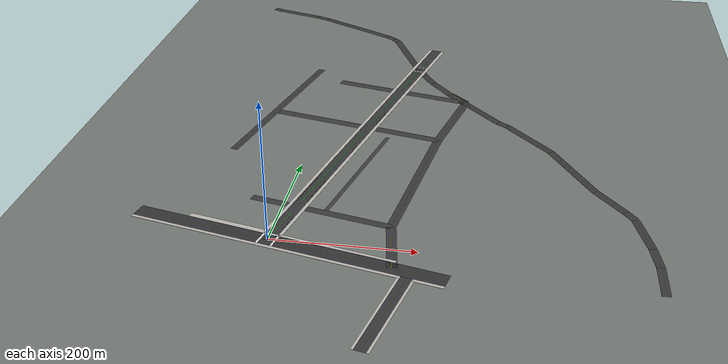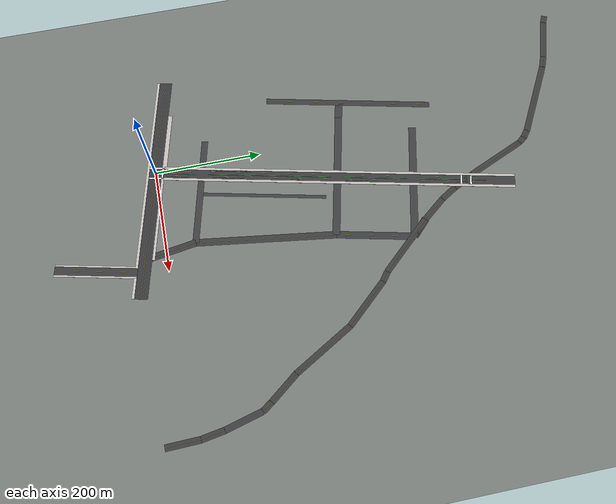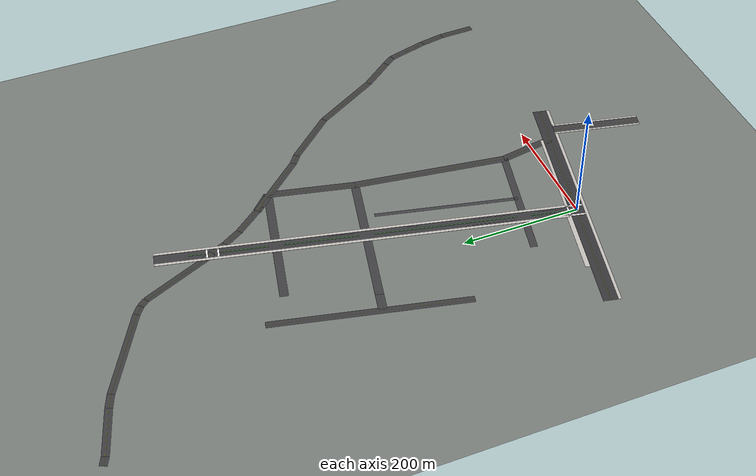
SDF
<sdf version="1.8">
 <world name="guanxin_world">
  <model name="ground_plane">
   <static>true</static>
   <pose>-100 480 0 0 0 0</pose>
   <link name="ground_link">
    <collision name="ground_col">
     <geometry><plane><normal>0 0 1</normal><size>1400 1400</size></plane></geometry>
     <surface>
      <friction><ode><mu>0.9</mu><mu2>0.9</mu2></ode></friction>
      <contact><ode><kd>100000</kd><kp>10000000</kp></ode></contact>
     </surface>
    </collision>
    <visual name="ground_vis">
     <geometry><plane><normal>0 0 1</normal><size>1400 1400</size></plane></geometry>
     <material><ambient>0.42 0.44 0.42 1</ambient><diffuse>0.48 0.50 0.48 1</diffuse></material>
    </visual>
   </link>
  </model>
  <model name="road_network">
   <static>true</static>
   <link name="road_link">
    <collision name="gx_road_str_col">
     <pose>76.077 331.379 0.01 0 0 1.34512</pose>
     <geometry><box><size>680.0 18.0 0.02</size></box></geometry>
     <surface><friction><ode><mu>0.9</mu><mu2>0.9</mu2></ode></friction></surface>
    </collision>
    <visual name="gx_road_str_vis">
     <pose>76.077 331.379 0.01 0 0 1.34512</pose>
     <geometry><box><size>680.0 18.0 0.02</size></box></geometry>
     <material><ambient>0.22 0.22 0.23 1</ambient><diffuse>0.24 0.24 0.25 1</diffuse></material>
    </visual>
    <collision name="gxe_seg1_south_col">
     <pose>163.693 7.563 0.01 0 0 1.73051</pose>
     <geometry><box><size>94.97 14.0 0.02</size></box></geometry>
     <surface><friction><ode><mu>0.9</mu><mu2>0.9</mu2></ode></friction></surface>
    </collision>
    <visual name="gxe_seg1_south_vis">
     <pose>163.693 7.563 0.01 0 0 1.73051</pose>
     <geometry><box><size>94.97 14.0 0.02</size></box></geometry>
     <material><ambient>0.22 0.22 0.23 1</ambient><diffuse>0.24 0.24 0.25 1</diffuse></material>
    </visual>
    <visual name="gxe_seg1_south_line">
     <pose>163.693 7.563 0.022 0 0 1.73051</pose>
     <geometry><box><size>94.97 0.25 0.002</size></box></geometry>
     <material><ambient>0.9 0.85 0.1 1</ambient><diffuse>0.95 0.9 0.1 1</diffuse></material>
    </visual>
    <collision name="gxe_seg2_school_col">
     <pose>174.119 181.900 0.01 0 0 1.43068</pose>
     <geometry><box><size>257.44 14.0 0.02</size></box></geometry>
     <surface><friction><ode><mu>0.9</mu><mu2>0.9</mu2></ode></friction></surface>
    </collision>
    <visual name="gxe_seg2_school_vis">
     <pose>174.119 181.900 0.01 0 0 1.43068</pose>
     <geometry><box><size>257.44 14.0 0.02</size></box></geometry>
     <material><ambient>0.22 0.22 0.23 1</ambient><diffuse>0.24 0.24 0.25 1</diffuse></material>
    </visual>
    <visual name="gxe_seg2_school_line">
     <pose>174.119 181.900 0.022 0 0 1.43068</pose>
     <geometry><box><size>257.44 0.25 0.002</size></box></geometry>
     <material><ambient>0.9 0.85 0.1 1</ambient><diffuse>0.95 0.9 0.1 1</diffuse></material>
    </visual>
    <collision name="gxe_seg3_park_col">
     <pose>208.151 379.290 0.01 0 0 1.34512</pose>
     <geometry><box><size>143.50 14.0 0.02</size></box></geometry>
     <surface><friction><ode><mu>0.9</mu><mu2>0.9</mu2></ode></friction></surface>
    </collision>
    <visual name="gxe_seg3_park_vis">
     <pose>208.151 379.290 0.01 0 0 1.34512</pose>
     <geometry><box><size>143.50 14.0 0.02</size></box></geometry>
     <material><ambient>0.22 0.22 0.23 1</ambient><diffuse>0.24 0.24 0.25 1</diffuse></material>
    </visual>
    <visual name="gxe_seg3_park_line">
     <pose>208.151 379.290 0.022 0 0 1.34512</pose>
     <geometry><box><size>143.50 0.25 0.002</size></box></geometry>
     <material><ambient>0.9 0.85 0.1 1</ambient><diffuse>0.95 0.9 0.1 1</diffuse></material>
    </visual>
    <collision name="gxe_seg4_north_col">
     <pose>209.600 463.300 0.01 0 0 2.37500</pose>
     <geometry><box><size>40.60 14.0 0.02</size></box></geometry>
     <surface><friction><ode><mu>0.9</mu><mu2>0.9</mu2></ode></friction></surface>
    </collision>
    <visual name="gxe_seg4_north_vis">
     <pose>209.600 463.300 0.01 0 0 2.37500</pose>
     <geometry><box><size>40.60 14.0 0.02</size></box></geometry>
     <material><ambient>0.22 0.22 0.23 1</ambient><diffuse>0.24 0.24 0.25 1</diffuse></material>
    </visual>
    <visual name="gxe_seg4_north_line">
     <pose>209.600 463.300 0.022 0 0 2.37500</pose>
     <geometry><box><size>40.60 0.25 0.002</size></box></geometry>
     <material><ambient>0.9 0.85 0.1 1</ambient><diffuse>0.95 0.9 0.1 1</diffuse></material>
    </visual>
    <collision name="guangfu_road_col">
     <pose>24.366 -5.594 0.01 0 0 -0.22568</pose>
     <geometry><box><size>450.0 24.0 0.02</size></box></geometry>
     <surface><friction><ode><mu>0.9</mu><mu2>0.9</mu2></ode></friction></surface>
    </collision>
    <visual name="guangfu_road_vis">
     <pose>24.366 -5.594 0.01 0 0 -0.22568</pose>
     <geometry><box><size>450.0 24.0 0.02</size></box></geometry>
     <material><ambient>0.20 0.20 0.21 1</ambient><diffuse>0.22 0.22 0.23 1</diffuse></material>
    </visual>
    <collision name="gx1_east_col">
     <pose>92.302 69.098 0.01 0 0 -0.22568</pose>
     <geometry><box><size>131.0 12.0 0.02</size></box></geometry>
     <surface><friction><ode><mu>0.9</mu><mu2>0.9</mu2></ode></friction></surface>
    </collision>
    <visual name="gx1_east_vis">
     <pose>92.302 69.098 0.01 0 0 -0.22568</pose>
     <geometry><box><size>131.0 12.0 0.02</size></box></geometry>
     <material><ambient>0.23 0.23 0.24 1</ambient><diffuse>0.25 0.25 0.26 1</diffuse></material>
    </visual>
    <collision name="gx1_west_col">
     <pose>-19.294 94.719 0.01 0 0 -0.22568</pose>
     <geometry><box><size>60.0 12.0 0.02</size></box></geometry>
     <surface><friction><ode><mu>0.9</mu><mu2>0.9</mu2></ode></friction></surface>
    </collision>
    <visual name="gx1_west_vis">
     <pose>-19.294 94.719 0.01 0 0 -0.22568</pose>
     <geometry><box><size>60.0 12.0 0.02</size></box></geometry>
     <material><ambient>0.23 0.23 0.24 1</ambient><diffuse>0.25 0.25 0.26 1</diffuse></material>
    </visual>
    <collision name="gx2_east_col">
     <pose>138.978 321.555 0.01 0 0 -0.22568</pose>
     <geometry><box><size>109.0 14.0 0.02</size></box></geometry>
     <surface><friction><ode><mu>0.9</mu><mu2>0.9</mu2></ode></friction></surface>
    </collision>
    <visual name="gx2_east_vis">
     <pose>138.978 321.555 0.01 0 0 -0.22568</pose>
     <geometry><box><size>109.0 14.0 0.02</size></box></geometry>
     <material><ambient>0.23 0.23 0.24 1</ambient><diffuse>0.25 0.25 0.26 1</diffuse></material>
    </visual>
    <collision name="gx2_west_col">
     <pose>8.863 351.428 0.01 0 0 -0.22568</pose>
     <geometry><box><size>120.0 14.0 0.02</size></box></geometry>
     <surface><friction><ode><mu>0.9</mu><mu2>0.9</mu2></ode></friction></surface>
    </collision>
    <visual name="gx2_west_vis">
     <pose>8.863 351.428 0.01 0 0 -0.22568</pose>
     <geometry><box><size>120.0 14.0 0.02</size></box></geometry>
     <material><ambient>0.23 0.23 0.24 1</ambient><diffuse>0.25 0.25 0.26 1</diffuse></material>
    </visual>
    <collision name="gxn_east_col">
     <pose>171.089 461.416 0.01 0 0 -0.22568</pose>
     <geometry><box><size>109.0 14.0 0.02</size></box></geometry>
     <surface><friction><ode><mu>0.9</mu><mu2>0.9</mu2></ode></friction></surface>
    </collision>
    <visual name="gxn_east_vis">
     <pose>171.089 461.416 0.01 0 0 -0.22568</pose>
     <geometry><box><size>109.0 14.0 0.02</size></box></geometry>
     <material><ambient>0.23 0.23 0.24 1</ambient><diffuse>0.25 0.25 0.26 1</diffuse></material>
    </visual>
    <collision name="gxn_west_col">
     <pose>50.720 489.052 0.01 0 0 -0.22568</pose>
     <geometry><box><size>100.0 14.0 0.02</size></box></geometry>
     <surface><friction><ode><mu>0.9</mu><mu2>0.9</mu2></ode></friction></surface>
    </collision>
    <visual name="gxn_west_vis">
     <pose>50.720 489.052 0.01 0 0 -0.22568</pose>
     <geometry><box><size>100.0 14.0 0.02</size></box></geometry>
     <material><ambient>0.23 0.23 0.24 1</ambient><diffuse>0.25 0.25 0.26 1</diffuse></material>
    </visual>
    <collision name="service_alley_col">
     <pose>87.031 191.378 0.01 0 0 1.34512</pose>
     <geometry><box><size>236.0 6.5 0.02</size></box></geometry>
     <surface><friction><ode><mu>0.9</mu><mu2>0.9</mu2></ode></friction></surface>
    </collision>
    <visual name="service_alley_vis">
     <pose>87.031 191.378 0.01 0 0 1.34512</pose>
     <geometry><box><size>236.0 6.5 0.02</size></box></geometry>
     <material><ambient>0.24 0.24 0.25 1</ambient><diffuse>0.26 0.26 0.27 1</diffuse></material>
    </visual>
    <collision name="gd_road_seg_00_col">
     <pose>506.405 -17.056 0.01 0 0 1.59791</pose>
     <geometry><box><size>60.28 12.0 0.02</size></box></geometry>
     <surface><friction><ode><mu>0.9</mu><mu2>0.9</mu2></ode></friction></surface>
    </collision>
    <visual name="gd_road_seg_00_vis">
     <pose>506.405 -17.056 0.01 0 0 1.59791</pose>
     <geometry><box><size>60.28 12.0 0.02</size></box></geometry>
     <material><ambient>0.22 0.22 0.23 1</ambient><diffuse>0.24 0.24 0.25 1</diffuse></material>
    </visual>
    <visual name="gd_road_seg_00_line">
     <pose>506.405 -17.056 0.022 0 0 1.59791</pose>
     <geometry><box><size>60.28 0.25 0.002</size></box></geometry>
     <material><ambient>0.9 0.85 0.1 1</ambient><diffuse>0.95 0.9 0.1 1</diffuse></material>
    </visual>
    <collision name="gd_road_seg_01_col">
     <pose>502.109 33.756 0.01 0 0 1.73744</pose>
     <geometry><box><size>41.95 12.0 0.02</size></box></geometry>
     <surface><friction><ode><mu>0.9</mu><mu2>0.9</mu2></ode></friction></surface>
    </collision>
    <visual name="gd_road_seg_01_vis">
     <pose>502.109 33.756 0.01 0 0 1.73744</pose>
     <geometry><box><size>41.95 12.0 0.02</size></box></geometry>
     <material><ambient>0.22 0.22 0.23 1</ambient><diffuse>0.24 0.24 0.25 1</diffuse></material>
    </visual>
    <visual name="gd_road_seg_01_line">
     <pose>502.109 33.756 0.022 0 0 1.73744</pose>
     <geometry><box><size>41.95 0.25 0.002</size></box></geometry>
     <material><ambient>0.9 0.85 0.1 1</ambient><diffuse>0.95 0.9 0.1 1</diffuse></material>
    </visual>
    <collision name="gd_road_seg_02_col">
     <pose>489.643 88.104 0.01 0 0 1.83167</pose>
     <geometry><box><size>69.68 12.0 0.02</size></box></geometry>
     <surface><friction><ode><mu>0.9</mu><mu2>0.9</mu2></ode></friction></surface>
    </collision>
    <visual name="gd_road_seg_02_vis">
     <pose>489.643 88.104 0.01 0 0 1.83167</pose>
     <geometry><box><size>69.68 12.0 0.02</size></box></geometry>
     <material><ambient>0.22 0.22 0.23 1</ambient><diffuse>0.24 0.24 0.25 1</diffuse></material>
    </visual>
    <visual name="gd_road_seg_02_line">
     <pose>489.643 88.104 0.022 0 0 1.83167</pose>
     <geometry><box><size>69.68 0.25 0.002</size></box></geometry>
     <material><ambient>0.9 0.85 0.1 1</ambient><diffuse>0.95 0.9 0.1 1</diffuse></material>
    </visual>
    <collision name="gd_road_seg_03_col">
     <pose>474.541 130.450 0.01 0 0 2.18440</pose>
     <geometry><box><size>21.24 12.0 0.02</size></box></geometry>
     <surface><friction><ode><mu>0.9</mu><mu2>0.9</mu2></ode></friction></surface>
    </collision>
    <visual name="gd_road_seg_03_vis">
     <pose>474.541 130.450 0.01 0 0 2.18440</pose>
     <geometry><box><size>21.24 12.0 0.02</size></box></geometry>
     <material><ambient>0.22 0.22 0.23 1</ambient><diffuse>0.24 0.24 0.25 1</diffuse></material>
    </visual>
    <visual name="gd_road_seg_03_line">
     <pose>474.541 130.450 0.022 0 0 2.18440</pose>
     <geometry><box><size>21.24 0.25 0.002</size></box></geometry>
     <material><ambient>0.9 0.85 0.1 1</ambient><diffuse>0.95 0.9 0.1 1</diffuse></material>
    </visual>
    <collision name="gd_road_seg_04_col">
     <pose>448.836 164.071 0.01 0 0 2.23666</pose>
     <geometry><box><size>63.43 12.0 0.02</size></box></geometry>
     <surface><friction><ode><mu>0.9</mu><mu2>0.9</mu2></ode></friction></surface>
    </collision>
    <visual name="gd_road_seg_04_vis">
     <pose>448.836 164.071 0.01 0 0 2.23666</pose>
     <geometry><box><size>63.43 12.0 0.02</size></box></geometry>
     <material><ambient>0.22 0.22 0.23 1</ambient><diffuse>0.24 0.24 0.25 1</diffuse></material>
    </visual>
    <visual name="gd_road_seg_04_line">
     <pose>448.836 164.071 0.022 0 0 2.23666</pose>
     <geometry><box><size>63.43 0.25 0.002</size></box></geometry>
     <material><ambient>0.9 0.85 0.1 1</ambient><diffuse>0.95 0.9 0.1 1</diffuse></material>
    </visual>
    <collision name="gd_road_seg_05_col">
     <pose>397.507 243.280 0.01 0 0 2.09998</pose>
     <geometry><box><size>125.74 12.0 0.02</size></box></geometry>
     <surface><friction><ode><mu>0.9</mu><mu2>0.9</mu2></ode></friction></surface>
    </collision>
    <visual name="gd_road_seg_05_vis">
     <pose>397.507 243.280 0.01 0 0 2.09998</pose>
     <geometry><box><size>125.74 12.0 0.02</size></box></geometry>
     <material><ambient>0.22 0.22 0.23 1</ambient><diffuse>0.24 0.24 0.25 1</diffuse></material>
    </visual>
    <visual name="gd_road_seg_05_line">
     <pose>397.507 243.280 0.022 0 0 2.09998</pose>
     <geometry><box><size>125.74 0.25 0.002</size></box></geometry>
     <material><ambient>0.9 0.85 0.1 1</ambient><diffuse>0.95 0.9 0.1 1</diffuse></material>
    </visual>
    <collision name="gd_road_seg_06_col">
     <pose>331.341 335.157 0.01 0 0 2.31209</pose>
     <geometry><box><size>101.97 12.0 0.02</size></box></geometry>
     <surface><friction><ode><mu>0.9</mu><mu2>0.9</mu2></ode></friction></surface>
    </collision>
    <visual name="gd_road_seg_06_vis">
     <pose>331.341 335.157 0.01 0 0 2.31209</pose>
     <geometry><box><size>101.97 12.0 0.02</size></box></geometry>
     <material><ambient>0.22 0.22 0.23 1</ambient><diffuse>0.24 0.24 0.25 1</diffuse></material>
    </visual>
    <visual name="gd_road_seg_06_line">
     <pose>331.341 335.157 0.022 0 0 2.31209</pose>
     <geometry><box><size>101.97 0.25 0.002</size></box></geometry>
     <material><ambient>0.9 0.85 0.1 1</ambient><diffuse>0.95 0.9 0.1 1</diffuse></material>
    </visual>
    <collision name="gd_road_seg_07_col">
     <pose>288.878 378.582 0.01 0 0 2.51480</pose>
     <geometry><box><size>19.85 12.0 0.02</size></box></geometry>
     <surface><friction><ode><mu>0.9</mu><mu2>0.9</mu2></ode></friction></surface>
    </collision>
    <visual name="gd_road_seg_07_vis">
     <pose>288.878 378.582 0.01 0 0 2.51480</pose>
     <geometry><box><size>19.85 12.0 0.02</size></box></geometry>
     <material><ambient>0.22 0.22 0.23 1</ambient><diffuse>0.24 0.24 0.25 1</diffuse></material>
    </visual>
    <visual name="gd_road_seg_07_line">
     <pose>288.878 378.582 0.022 0 0 2.51480</pose>
     <geometry><box><size>19.85 0.25 0.002</size></box></geometry>
     <material><ambient>0.9 0.85 0.1 1</ambient><diffuse>0.95 0.9 0.1 1</diffuse></material>
    </visual>
    <collision name="gd_road_seg_08_col">
     <pose>237.911 430.907 0.01 0 0 2.31625</pose>
     <geometry><box><size>126.58 12.0 0.02</size></box></geometry>
     <surface><friction><ode><mu>0.9</mu><mu2>0.9</mu2></ode></friction></surface>
    </collision>
    <visual name="gd_road_seg_08_vis">
     <pose>237.911 430.907 0.01 0 0 2.31625</pose>
     <geometry><box><size>126.58 12.0 0.02</size></box></geometry>
     <material><ambient>0.22 0.22 0.23 1</ambient><diffuse>0.24 0.24 0.25 1</diffuse></material>
    </visual>
    <visual name="gd_road_seg_08_line">
     <pose>237.911 430.907 0.022 0 0 2.31625</pose>
     <geometry><box><size>126.58 0.25 0.002</size></box></geometry>
     <material><ambient>0.9 0.85 0.1 1</ambient><diffuse>0.95 0.9 0.1 1</diffuse></material>
    </visual>
    <collision name="gd_road_seg_09_col">
     <pose>178.084 498.300 0.01 0 0 2.25097</pose>
     <geometry><box><size>53.73 12.0 0.02</size></box></geometry>
     <surface><friction><ode><mu>0.9</mu><mu2>0.9</mu2></ode></friction></surface>
    </collision>
    <visual name="gd_road_seg_09_vis">
     <pose>178.084 498.300 0.01 0 0 2.25097</pose>
     <geometry><box><size>53.73 12.0 0.02</size></box></geometry>
     <material><ambient>0.22 0.22 0.23 1</ambient><diffuse>0.24 0.24 0.25 1</diffuse></material>
    </visual>
    <visual name="gd_road_seg_09_line">
     <pose>178.084 498.300 0.022 0 0 2.25097</pose>
     <geometry><box><size>53.73 0.25 0.002</size></box></geometry>
     <material><ambient>0.9 0.85 0.1 1</ambient><diffuse>0.95 0.9 0.1 1</diffuse></material>
    </visual>
    <collision name="gd_road_seg_10_col">
     <pose>152.087 533.944 0.01 0 0 2.12334</pose>
     <geometry><box><size>34.67 12.0 0.02</size></box></geometry>
     <surface><friction><ode><mu>0.9</mu><mu2>0.9</mu2></ode></friction></surface>
    </collision>
    <visual name="gd_road_seg_10_vis">
     <pose>152.087 533.944 0.01 0 0 2.12334</pose>
     <geometry><box><size>34.67 12.0 0.02</size></box></geometry>
     <material><ambient>0.22 0.22 0.23 1</ambient><diffuse>0.24 0.24 0.25 1</diffuse></material>
    </visual>
    <visual name="gd_road_seg_10_line">
     <pose>152.087 533.944 0.022 0 0 2.12334</pose>
     <geometry><box><size>34.67 0.25 0.002</size></box></geometry>
     <material><ambient>0.9 0.85 0.1 1</ambient><diffuse>0.95 0.9 0.1 1</diffuse></material>
    </visual>
    <collision name="gd_road_seg_11_col">
     <pose>137.283 560.899 0.01 0 0 2.00827</pose>
     <geometry><box><size>26.93 12.0 0.02</size></box></geometry>
     <surface><friction><ode><mu>0.9</mu><mu2>0.9</mu2></ode></friction></surface>
    </collision>
    <visual name="gd_road_seg_11_vis">
     <pose>137.283 560.899 0.01 0 0 2.00827</pose>
     <geometry><box><size>26.93 12.0 0.02</size></box></geometry>
     <material><ambient>0.22 0.22 0.23 1</ambient><diffuse>0.24 0.24 0.25 1</diffuse></material>
    </visual>
    <visual name="gd_road_seg_11_line">
     <pose>137.283 560.899 0.022 0 0 2.00827</pose>
     <geometry><box><size>26.93 0.25 0.002</size></box></geometry>
     <material><ambient>0.9 0.85 0.1 1</ambient><diffuse>0.95 0.9 0.1 1</diffuse></material>
    </visual>
    <collision name="gd_road_seg_12_col">
     <pose>127.015 580.657 0.01 0 0 2.11382</pose>
     <geometry><box><size>17.66 12.0 0.02</size></box></geometry>
     <surface><friction><ode><mu>0.9</mu><mu2>0.9</mu2></ode></friction></surface>
    </collision>
    <visual name="gd_road_seg_12_vis">
     <pose>127.015 580.657 0.01 0 0 2.11382</pose>
     <geometry><box><size>17.66 12.0 0.02</size></box></geometry>
     <material><ambient>0.22 0.22 0.23 1</ambient><diffuse>0.24 0.24 0.25 1</diffuse></material>
    </visual>
    <visual name="gd_road_seg_12_line">
     <pose>127.015 580.657 0.022 0 0 2.11382</pose>
     <geometry><box><size>17.66 0.25 0.002</size></box></geometry>
     <material><ambient>0.9 0.85 0.1 1</ambient><diffuse>0.95 0.9 0.1 1</diffuse></material>
    </visual>
    <collision name="gd_road_seg_13_col">
     <pose>98.574 642.310 0.01 0 0 1.98650</pose>
     <geometry><box><size>118.26 12.0 0.02</size></box></geometry>
     <surface><friction><ode><mu>0.9</mu><mu2>0.9</mu2></ode></friction></surface>
    </collision>
    <visual name="gd_road_seg_13_vis">
     <pose>98.574 642.310 0.01 0 0 1.98650</pose>
     <geometry><box><size>118.26 12.0 0.02</size></box></geometry>
     <material><ambient>0.22 0.22 0.23 1</ambient><diffuse>0.24 0.24 0.25 1</diffuse></material>
    </visual>
    <visual name="gd_road_seg_13_line">
     <pose>98.574 642.310 0.022 0 0 1.98650</pose>
     <geometry><box><size>118.26 0.25 0.002</size></box></geometry>
     <material><ambient>0.9 0.85 0.1 1</ambient><diffuse>0.95 0.9 0.1 1</diffuse></material>
    </visual>
    <collision name="gd_road_seg_14_col">
     <pose>70.274 701.765 0.01 0 0 2.26036</pose>
     <geometry><box><size>13.90 12.0 0.02</size></box></geometry>
     <surface><friction><ode><mu>0.9</mu><mu2>0.9</mu2></ode></friction></surface>
    </collision>
    <visual name="gd_road_seg_14_vis">
     <pose>70.274 701.765 0.01 0 0 2.26036</pose>
     <geometry><box><size>13.90 12.0 0.02</size></box></geometry>
     <material><ambient>0.22 0.22 0.23 1</ambient><diffuse>0.24 0.24 0.25 1</diffuse></material>
    </visual>
    <visual name="gd_road_seg_14_line">
     <pose>70.274 701.765 0.022 0 0 2.26036</pose>
     <geometry><box><size>13.90 0.25 0.002</size></box></geometry>
     <material><ambient>0.9 0.85 0.1 1</ambient><diffuse>0.95 0.9 0.1 1</diffuse></material>
    </visual>
    <collision name="gd_road_seg_15_col">
     <pose>59.017 712.393 0.01 0 0 2.48515</pose>
     <geometry><box><size>17.25 12.0 0.02</size></box></geometry>
     <surface><friction><ode><mu>0.9</mu><mu2>0.9</mu2></ode></friction></surface>
    </collision>
    <visual name="gd_road_seg_15_vis">
     <pose>59.017 712.393 0.01 0 0 2.48515</pose>
     <geometry><box><size>17.25 12.0 0.02</size></box></geometry>
     <material><ambient>0.22 0.22 0.23 1</ambient><diffuse>0.24 0.24 0.25 1</diffuse></material>
    </visual>
    <visual name="gd_road_seg_15_line">
     <pose>59.017 712.393 0.022 0 0 2.48515</pose>
     <geometry><box><size>17.25 0.25 0.002</size></box></geometry>
     <material><ambient>0.9 0.85 0.1 1</ambient><diffuse>0.95 0.9 0.1 1</diffuse></material>
    </visual>
    <collision name="gd_road_seg_16_col">
     <pose>-14.908 754.894 0.01 0 0 2.63492</pose>
     <geometry><box><size>153.46 12.0 0.02</size></box></geometry>
     <surface><friction><ode><mu>0.9</mu><mu2>0.9</mu2></ode></friction></surface>
    </collision>
    <visual name="gd_road_seg_16_vis">
     <pose>-14.908 754.894 0.01 0 0 2.63492</pose>
     <geometry><box><size>153.46 12.0 0.02</size></box></geometry>
     <material><ambient>0.22 0.22 0.23 1</ambient><diffuse>0.24 0.24 0.25 1</diffuse></material>
    </visual>
    <visual name="gd_road_seg_16_line">
     <pose>-14.908 754.894 0.022 0 0 2.63492</pose>
     <geometry><box><size>153.46 0.25 0.002</size></box></geometry>
     <material><ambient>0.9 0.85 0.1 1</ambient><diffuse>0.95 0.9 0.1 1</diffuse></material>
    </visual>
    <collision name="gd_road_seg_17_col">
     <pose>-93.581 796.852 0.01 0 0 2.75440</pose>
     <geometry><box><size>25.02 12.0 0.02</size></box></geometry>
     <surface><friction><ode><mu>0.9</mu><mu2>0.9</mu2></ode></friction></surface>
    </collision>
    <visual name="gd_road_seg_17_vis">
     <pose>-93.581 796.852 0.01 0 0 2.75440</pose>
     <geometry><box><size>25.02 12.0 0.02</size></box></geometry>
     <material><ambient>0.22 0.22 0.23 1</ambient><diffuse>0.24 0.24 0.25 1</diffuse></material>
    </visual>
    <visual name="gd_road_seg_17_line">
     <pose>-93.581 796.852 0.022 0 0 2.75440</pose>
     <geometry><box><size>25.02 0.25 0.002</size></box></geometry>
     <material><ambient>0.9 0.85 0.1 1</ambient><diffuse>0.95 0.9 0.1 1</diffuse></material>
    </visual>
    <collision name="gd_road_seg_18_col">
     <pose>-145.386 814.517 0.01 0 0 2.83030</pose>
     <geometry><box><size>84.50 12.0 0.02</size></box></geometry>
     <surface><friction><ode><mu>0.9</mu><mu2>0.9</mu2></ode></friction></surface>
    </collision>
    <visual name="gd_road_seg_18_vis">
     <pose>-145.386 814.517 0.01 0 0 2.83030</pose>
     <geometry><box><size>84.50 12.0 0.02</size></box></geometry>
     <material><ambient>0.22 0.22 0.23 1</ambient><diffuse>0.24 0.24 0.25 1</diffuse></material>
    </visual>
    <visual name="gd_road_seg_18_line">
     <pose>-145.386 814.517 0.022 0 0 2.83030</pose>
     <geometry><box><size>84.50 0.25 0.002</size></box></geometry>
     <material><ambient>0.9 0.85 0.1 1</ambient><diffuse>0.95 0.9 0.1 1</diffuse></material>
    </visual>
    <collision name="gd_road_seg_19_col">
     <pose>-192.927 830.869 0.01 0 0 2.70566</pose>
     <geometry><box><size>16.15 12.0 0.02</size></box></geometry>
     <surface><friction><ode><mu>0.9</mu><mu2>0.9</mu2></ode></friction></surface>
    </collision>
    <visual name="gd_road_seg_19_vis">
     <pose>-192.927 830.869 0.01 0 0 2.70566</pose>
     <geometry><box><size>16.15 12.0 0.02</size></box></geometry>
     <material><ambient>0.22 0.22 0.23 1</ambient><diffuse>0.24 0.24 0.25 1</diffuse></material>
    </visual>
    <visual name="gd_road_seg_19_line">
     <pose>-192.927 830.869 0.022 0 0 2.70566</pose>
     <geometry><box><size>16.15 0.25 0.002</size></box></geometry>
     <material><ambient>0.9 0.85 0.1 1</ambient><diffuse>0.95 0.9 0.1 1</diffuse></material>
    </visual>
    <collision name="median_s1_col">
     <pose>10.293 44.834 0.10 0 0 1.34512</pose>
     <geometry><box><size>60.00 1.8 0.20</size></box></geometry>
    </collision>
    <visual name="median_s1_curb">
     <pose>10.293 44.834 0.10 0 0 1.34512</pose>
     <geometry><box><size>60.00 1.8 0.20</size></box></geometry>
     <material><ambient>0.6 0.6 0.6 1</ambient><diffuse>0.65 0.65 0.65 1</diffuse></material>
    </visual>
    <visual name="median_s1_lawn">
     <pose>10.293 44.834 0.205 0 0 1.34512</pose>
     <geometry><box><size>58.80 1.4 0.01</size></box></geometry>
     <material><ambient>0.20 0.52 0.20 1</ambient><diffuse>0.25 0.58 0.25 1</diffuse></material>
    </visual>
    <collision name="median_mid_col">
     <pose>48.334 210.523 0.10 0 0 1.34512</pose>
     <geometry><box><size>232.00 1.8 0.20</size></box></geometry>
    </collision>
    <visual name="median_mid_curb">
     <pose>48.334 210.523 0.10 0 0 1.34512</pose>
     <geometry><box><size>232.00 1.8 0.20</size></box></geometry>
     <material><ambient>0.6 0.6 0.6 1</ambient><diffuse>0.65 0.65 0.65 1</diffuse></material>
    </visual>
    <visual name="median_mid_lawn">
     <pose>48.334 210.523 0.205 0 0 1.34512</pose>
     <geometry><box><size>230.80 1.4 0.01</size></box></geometry>
     <material><ambient>0.20 0.52 0.20 1</ambient><diffuse>0.25 0.58 0.25 1</diffuse></material>
    </visual>
    <collision name="median_n1_col">
     <pose>93.087 405.451 0.10 0 0 1.34512</pose>
     <geometry><box><size>120.00 1.8 0.20</size></box></geometry>
    </collision>
    <visual name="median_n1_curb">
     <pose>93.087 405.451 0.10 0 0 1.34512</pose>
     <geometry><box><size>120.00 1.8 0.20</size></box></geometry>
     <material><ambient>0.6 0.6 0.6 1</ambient><diffuse>0.65 0.65 0.65 1</diffuse></material>
    </visual>
    <visual name="median_n1_lawn">
     <pose>93.087 405.451 0.205 0 0 1.34512</pose>
     <geometry><box><size>118.80 1.4 0.01</size></box></geometry>
     <material><ambient>0.20 0.52 0.20 1</ambient><diffuse>0.25 0.58 0.25 1</diffuse></material>
    </visual>
    <collision name="median_n2_col">
     <pose>120.387 524.358 0.10 0 0 1.34512</pose>
     <geometry><box><size>76.00 1.8 0.20</size></box></geometry>
    </collision>
    <visual name="median_n2_curb">
     <pose>120.387 524.358 0.10 0 0 1.34512</pose>
     <geometry><box><size>76.00 1.8 0.20</size></box></geometry>
     <material><ambient>0.6 0.6 0.6 1</ambient><diffuse>0.65 0.65 0.65 1</diffuse></material>
    </visual>
    <visual name="median_n2_lawn">
     <pose>120.387 524.358 0.205 0 0 1.34512</pose>
     <geometry><box><size>74.80 1.4 0.01</size></box></geometry>
     <material><ambient>0.20 0.52 0.20 1</ambient><diffuse>0.25 0.58 0.25 1</diffuse></material>
    </visual>
    <collision name="median_n3_col">
     <pose>137.170 597.456 0.10 0 0 1.34512</pose>
     <geometry><box><size>26.00 1.8 0.20</size></box></geometry>
    </collision>
    <visual name="median_n3_curb">
     <pose>137.170 597.456 0.10 0 0 1.34512</pose>
     <geometry><box><size>26.00 1.8 0.20</size></box></geometry>
     <material><ambient>0.6 0.6 0.6 1</ambient><diffuse>0.65 0.65 0.65 1</diffuse></material>
    </visual>
    <visual name="median_n3_lawn">
     <pose>137.170 597.456 0.205 0 0 1.34512</pose>
     <geometry><box><size>24.80 1.4 0.01</size></box></geometry>
     <material><ambient>0.20 0.52 0.20 1</ambient><diffuse>0.25 0.58 0.25 1</diffuse></material>
    </visual>
    <visual name="dash_r_16">
     <pose>14.679 43.827 0.022 0 0 1.34512</pose>
     <geometry><box><size>60.00 0.15 0.002</size></box></geometry>
     <material><ambient>0.92 0.92 0.92 1</ambient><diffuse>0.95 0.95 0.95 1</diffuse></material>
    </visual>
    <visual name="dash_l_16">
     <pose>5.907 45.841 0.022 0 0 1.34512</pose>
     <geometry><box><size>60.00 0.15 0.002</size></box></geometry>
     <material><ambient>0.92 0.92 0.92 1</ambient><diffuse>0.95 0.95 0.95 1</diffuse></material>
    </visual>
    <visual name="dash_r_100">
     <pose>52.720 209.516 0.022 0 0 1.34512</pose>
     <geometry><box><size>232.00 0.15 0.002</size></box></geometry>
     <material><ambient>0.92 0.92 0.92 1</ambient><diffuse>0.95 0.95 0.95 1</diffuse></material>
    </visual>
    <visual name="dash_l_100">
     <pose>43.948 211.530 0.022 0 0 1.34512</pose>
     <geometry><box><size>232.00 0.15 0.002</size></box></geometry>
     <material><ambient>0.92 0.92 0.92 1</ambient><diffuse>0.95 0.95 0.95 1</diffuse></material>
    </visual>
    <visual name="dash_r_356">
     <pose>97.473 404.444 0.022 0 0 1.34512</pose>
     <geometry><box><size>120.00 0.15 0.002</size></box></geometry>
     <material><ambient>0.92 0.92 0.92 1</ambient><diffuse>0.95 0.95 0.95 1</diffuse></material>
    </visual>
    <visual name="dash_l_356">
     <pose>88.702 406.458 0.022 0 0 1.34512</pose>
     <geometry><box><size>120.00 0.15 0.002</size></box></geometry>
     <material><ambient>0.92 0.92 0.92 1</ambient><diffuse>0.95 0.95 0.95 1</diffuse></material>
    </visual>
    <visual name="dash_r_500">
     <pose>124.773 523.351 0.022 0 0 1.34512</pose>
     <geometry><box><size>76.00 0.15 0.002</size></box></geometry>
     <material><ambient>0.92 0.92 0.92 1</ambient><diffuse>0.95 0.95 0.95 1</diffuse></material>
    </visual>
    <visual name="dash_l_500">
     <pose>116.001 525.365 0.022 0 0 1.34512</pose>
     <geometry><box><size>76.00 0.15 0.002</size></box></geometry>
     <material><ambient>0.92 0.92 0.92 1</ambient><diffuse>0.95 0.95 0.95 1</diffuse></material>
    </visual>
    <visual name="dash_r_600">
     <pose>141.556 596.449 0.022 0 0 1.34512</pose>
     <geometry><box><size>26.00 0.15 0.002</size></box></geometry>
     <material><ambient>0.92 0.92 0.92 1</ambient><diffuse>0.95 0.95 0.95 1</diffuse></material>
    </visual>
    <visual name="dash_l_600">
     <pose>132.784 598.463 0.022 0 0 1.34512</pose>
     <geometry><box><size>26.00 0.15 0.002</size></box></geometry>
     <material><ambient>0.92 0.92 0.92 1</ambient><diffuse>0.95 0.95 0.95 1</diffuse></material>
    </visual>
    <visual name="guangfu_center_line">
     <pose>24.366 -5.594 0.022 0 0 -0.22568</pose>
     <geometry><box><size>450.0 0.30 0.002</size></box></geometry>
     <material><ambient>0.9 0.85 0.1 1</ambient><diffuse>0.95 0.9 0.1 1</diffuse></material>
    </visual>
    <visual name="guangfu_dash_eb">
     <pose>25.261 -1.696 0.022 0 0 -0.22568</pose>
     <geometry><box><size>450.0 0.15 0.002</size></box></geometry>
     <material><ambient>0.92 0.92 0.92 1</ambient><diffuse>0.95 0.95 0.95 1</diffuse></material>
    </visual>
    <visual name="guangfu_dash_wb">
     <pose>23.471 -9.493 0.022 0 0 -0.22568</pose>
     <geometry><box><size>450.0 0.15 0.002</size></box></geometry>
     <material><ambient>0.92 0.92 0.92 1</ambient><diffuse>0.95 0.95 0.95 1</diffuse></material>
    </visual>
    <visual name="crosswalk_guanxin_vis">
     <pose>3.021 13.158 0.022 0 0 1.34512</pose>
     <geometry><box><size>3.0 18.0 0.002</size></box></geometry>
     <material><ambient>0.95 0.95 0.95 1</ambient><diffuse>0.98 0.98 0.98 1</diffuse></material>
    </visual>
    <visual name="crosswalk_guangfu_w_vis">
     <pose>-10.234 2.350 0.022 0 0 -0.22568</pose>
     <geometry><box><size>3.0 24.0 0.002</size></box></geometry>
     <material><ambient>0.95 0.95 0.95 1</ambient><diffuse>0.98 0.98 0.98 1</diffuse></material>
    </visual>
    <visual name="crosswalk_guangfu_e_vis">
     <pose>10.234 -2.350 0.022 0 0 -0.22568</pose>
     <geometry><box><size>3.0 24.0 0.002</size></box></geometry>
     <material><ambient>0.95 0.95 0.95 1</ambient><diffuse>0.98 0.98 0.98 1</diffuse></material>
    </visual>
    <visual name="crosswalk_gd_s_vis">
     <pose>129.562 564.318 0.022 0 0 1.34512</pose>
     <geometry><box><size>3.0 18.0 0.002</size></box></geometry>
     <material><ambient>0.95 0.95 0.95 1</ambient><diffuse>0.98 0.98 0.98 1</diffuse></material>
    </visual>
    <visual name="crosswalk_gd_n_vis">
     <pose>133.589 581.862 0.022 0 0 1.34512</pose>
     <geometry><box><size>3.0 18.0 0.002</size></box></geometry>
     <material><ambient>0.95 0.95 0.95 1</ambient><diffuse>0.98 0.98 0.98 1</diffuse></material>
    </visual>
    <visual name="crosswalk_gd_e_vis">
     <pose>142.784 570.516 0.022 0 0 -0.22568</pose>
     <geometry><box><size>3.0 14.0 0.002</size></box></geometry>
     <material><ambient>0.95 0.95 0.95 1</ambient><diffuse>0.98 0.98 0.98 1</diffuse></material>
    </visual>
    <visual name="crosswalk_gd_w_vis">
     <pose>120.367 575.663 0.022 0 0 -0.22568</pose>
     <geometry><box><size>3.0 14.0 0.002</size></box></geometry>
     <material><ambient>0.95 0.95 0.95 1</ambient><diffuse>0.98 0.98 0.98 1</diffuse></material>
    </visual>
    <collision name="sw_west_col">
     <pose>66.663 341.749 0.10 0 0 1.34512</pose>
     <geometry><box><size>664.0 5.0 0.20</size></box></geometry>
    </collision>
    <visual name="sw_west_vis">
     <pose>66.663 341.749 0.10 0 0 1.34512</pose>
     <geometry><box><size>664.0 5.0 0.20</size></box></geometry>
     <material><ambient>0.72 0.70 0.68 1</ambient><diffuse>0.78 0.76 0.74 1</diffuse></material>
    </visual>
    <collision name="sw_east_col">
     <pose>89.079 336.602 0.10 0 0 1.34512</pose>
     <geometry><box><size>664.0 5.0 0.20</size></box></geometry>
    </collision>
    <visual name="sw_east_vis">
     <pose>89.079 336.602 0.10 0 0 1.34512</pose>
     <geometry><box><size>664.0 5.0 0.20</size></box></geometry>
     <material><ambient>0.72 0.70 0.68 1</ambient><diffuse>0.78 0.76 0.74 1</diffuse></material>
    </visual>
    <collision name="sw_guangfu_north_col">
     <pose>-63.183 30.922 0.10 0 0 -0.22568</pose>
     <geometry><box><size>115.0 8.0 0.20</size></box></geometry>
    </collision>
    <visual name="sw_guangfu_north_vis">
     <pose>-63.183 30.922 0.10 0 0 -0.22568</pose>
     <geometry><box><size>115.0 8.0 0.20</size></box></geometry>
     <material><ambient>0.72 0.70 0.68 1</ambient><diffuse>0.78 0.76 0.74 1</diffuse></material>
    </visual>
    <collision name="sw_guangfu_ne_col">
     <pose>94.228 -6.756 0.10 0 0 -0.22568</pose>
     <geometry><box><size>165.0 5.0 0.20</size></box></geometry>
    </collision>
    <visual name="sw_guangfu_ne_vis">
     <pose>94.228 -6.756 0.10 0 0 -0.22568</pose>
     <geometry><box><size>165.0 5.0 0.20</size></box></geometry>
     <material><ambient>0.72 0.70 0.68 1</ambient><diffuse>0.78 0.76 0.74 1</diffuse></material>
    </visual>
    <collision name="sw_guangfu_south_w_col">
     <pose>-7.143 -13.237 0.10 0 0 -0.22568</pose>
     <geometry><box><size>392.0 5.0 0.20</size></box></geometry>
    </collision>
    <visual name="sw_guangfu_south_w_vis">
     <pose>-7.143 -13.237 0.10 0 0 -0.22568</pose>
     <geometry><box><size>392.0 5.0 0.20</size></box></geometry>
     <material><ambient>0.72 0.70 0.68 1</ambient><diffuse>0.78 0.76 0.74 1</diffuse></material>
    </visual>
    <collision name="sw_guangfu_south_e_col">
     <pose>219.948 -65.375 0.10 0 0 -0.22568</pose>
     <geometry><box><size>42.0 5.0 0.20</size></box></geometry>
    </collision>
    <visual name="sw_guangfu_south_e_vis">
     <pose>219.948 -65.375 0.10 0 0 -0.22568</pose>
     <geometry><box><size>42.0 5.0 0.20</size></box></geometry>
     <material><ambient>0.72 0.70 0.68 1</ambient><diffuse>0.78 0.76 0.74 1</diffuse></material>
    </visual>
    <collision name="jieshou_road_col">
     <pose>175.474 -129.544 0.01 0 0 -1.79648</pose>
     <geometry><box><size>150.0 16.0 0.02</size></box></geometry>
     <surface><friction><ode><mu>0.9</mu><mu2>0.9</mu2></ode></friction></surface>
    </collision>
    <visual name="jieshou_road_vis">
     <pose>175.474 -129.544 0.01 0 0 -1.79648</pose>
     <geometry><box><size>150.0 16.0 0.02</size></box></geometry>
     <material><ambient>0.22 0.22 0.23 1</ambient><diffuse>0.24 0.24 0.25 1</diffuse></material>
    </visual>
    <visual name="jieshou_road_line">
     <pose>175.474 -129.544 0.022 0 0 -1.79648</pose>
     <geometry><box><size>150.0 0.25 0.002</size></box></geometry>
     <material><ambient>0.9 0.85 0.1 1</ambient><diffuse>0.95 0.9 0.1 1</diffuse></material>
    </visual>
    <collision name="sw_jieshou_east_col">
     <pose>184.977 -131.726 0.10 0 0 -1.79648</pose>
     <geometry><box><size>150.0 3.5 0.20</size></box></geometry>
    </collision>
    <visual name="sw_jieshou_east_vis">
     <pose>184.977 -131.726 0.10 0 0 -1.79648</pose>
     <geometry><box><size>150.0 3.5 0.20</size></box></geometry>
     <material><ambient>0.72 0.70 0.68 1</ambient><diffuse>0.78 0.76 0.74 1</diffuse></material>
    </visual>
    <collision name="sw_jieshou_west_col">
     <pose>165.971 -127.362 0.10 0 0 -1.79648</pose>
     <geometry><box><size>150.0 3.5 0.20</size></box></geometry>
    </collision>
    <visual name="sw_jieshou_west_vis">
     <pose>165.971 -127.362 0.10 0 0 -1.79648</pose>
     <geometry><box><size>150.0 3.5 0.20</size></box></geometry>
     <material><ambient>0.72 0.70 0.68 1</ambient><diffuse>0.78 0.76 0.74 1</diffuse></material>
    </visual>
    <collision name="gx2_west_ext_col">
     <pose>-64.240 368.240 0.01 0 0 -0.22568</pose>
     <geometry><box><size>30.0 14.0 0.02</size></box></geometry>
     <surface><friction><ode><mu>0.9</mu><mu2>0.9</mu2></ode></friction></surface>
    </collision>
    <visual name="gx2_west_ext_vis">
     <pose>-64.240 368.240 0.01 0 0 -0.22568</pose>
     <geometry><box><size>30.0 14.0 0.02</size></box></geometry>
     <material><ambient>0.23 0.23 0.24 1</ambient><diffuse>0.25 0.25 0.26 1</diffuse></material>
    </visual>
    <collision name="xinzhuang_street_col">
     <pose>-78.000 390.000 0.01 0 0 1.34512</pose>
     <geometry><box><size>320.0 12.0 0.02</size></box></geometry>
     <surface><friction><ode><mu>0.9</mu><mu2>0.9</mu2></ode></friction></surface>
    </collision>
    <visual name="xinzhuang_street_vis">
     <pose>-78.000 390.000 0.01 0 0 1.34512</pose>
     <geometry><box><size>320.0 12.0 0.02</size></box></geometry>
     <material><ambient>0.22 0.22 0.23 1</ambient><diffuse>0.24 0.24 0.25 1</diffuse></material>
    </visual>
    <visual name="xinzhuang_street_line">
     <pose>-78.000 390.000 0.022 0 0 1.34512</pose>
     <geometry><box><size>320.0 0.20 0.002</size></box></geometry>
     <material><ambient>0.9 0.85 0.1 1</ambient><diffuse>0.95 0.9 0.1 1</diffuse></material>
    </visual>
    <visual name="stall_frame_01">
     <pose>13.148 22.632 0.022 0 0 1.34512</pose>
     <geometry><box><size>5.5 2.5 0.0015</size></box></geometry>
     <material><ambient>0.92 0.92 0.92 1</ambient><diffuse>0.95 0.95 0.95 1</diffuse></material>
    </visual>
    <visual name="stall_inner_01">
     <pose>13.148 22.632 0.023 0 0 1.34512</pose>
     <geometry><box><size>5.2 2.2 0.0015</size></box></geometry>
     <material><ambient>0.22 0.22 0.23 1</ambient><diffuse>0.24 0.24 0.25 1</diffuse></material>
    </visual>
    <visual name="stall_frame_02">
     <pose>14.714 29.454 0.022 0 0 1.34512</pose>
     <geometry><box><size>5.5 2.5 0.0015</size></box></geometry>
     <material><ambient>0.92 0.92 0.92 1</ambient><diffuse>0.95 0.95 0.95 1</diffuse></material>
    </visual>
    <visual name="stall_inner_02">
     <pose>14.714 29.454 0.023 0 0 1.34512</pose>
     <geometry><box><size>5.2 2.2 0.0015</size></box></geometry>
     <material><ambient>0.22 0.22 0.23 1</ambient><diffuse>0.24 0.24 0.25 1</diffuse></material>
    </visual>
    <visual name="stall_frame_03">
     <pose>16.280 36.277 0.022 0 0 1.34512</pose>
     <geometry><box><size>5.5 2.5 0.0015</size></box></geometry>
     <material><ambient>0.92 0.92 0.92 1</ambient><diffuse>0.95 0.95 0.95 1</diffuse></material>
    </visual>
    <visual name="stall_inner_03">
     <pose>16.280 36.277 0.023 0 0 1.34512</pose>
     <geometry><box><size>5.2 2.2 0.0015</size></box></geometry>
     <material><ambient>0.22 0.22 0.23 1</ambient><diffuse>0.24 0.24 0.25 1</diffuse></material>
    </visual>
    <visual name="stall_frame_04">
     <pose>17.847 43.099 0.022 0 0 1.34512</pose>
     <geometry><box><size>5.5 2.5 0.0015</size></box></geometry>
     <material><ambient>0.92 0.92 0.92 1</ambient><diffuse>0.95 0.95 0.95 1</diffuse></material>
    </visual>
    <visual name="stall_inner_04">
     <pose>17.847 43.099 0.023 0 0 1.34512</pose>
     <geometry><box><size>5.2 2.2 0.0015</size></box></geometry>
     <material><ambient>0.22 0.22 0.23 1</ambient><diffuse>0.24 0.24 0.25 1</diffuse></material>
    </visual>
    <visual name="stall_frame_05">
     <pose>19.413 49.922 0.022 0 0 1.34512</pose>
     <geometry><box><size>5.5 2.5 0.0015</size></box></geometry>
     <material><ambient>0.92 0.92 0.92 1</ambient><diffuse>0.95 0.95 0.95 1</diffuse></material>
    </visual>
    <visual name="stall_inner_05">
     <pose>19.413 49.922 0.023 0 0 1.34512</pose>
     <geometry><box><size>5.2 2.2 0.0015</size></box></geometry>
     <material><ambient>0.22 0.22 0.23 1</ambient><diffuse>0.24 0.24 0.25 1</diffuse></material>
    </visual>
    <visual name="stall_frame_06">
     <pose>20.980 56.744 0.022 0 0 1.34512</pose>
     <geometry><box><size>5.5 2.5 0.0015</size></box></geometry>
     <material><ambient>0.92 0.92 0.92 1</ambient><diffuse>0.95 0.95 0.95 1</diffuse></material>
    </visual>
    <visual name="stall_inner_06">
     <pose>20.980 56.744 0.023 0 0 1.34512</pose>
     <geometry><box><size>5.2 2.2 0.0015</size></box></geometry>
     <material><ambient>0.22 0.22 0.23 1</ambient><diffuse>0.24 0.24 0.25 1</diffuse></material>
    </visual>
    <visual name="stall_frame_07">
     <pose>32.168 105.476 0.022 0 0 1.34512</pose>
     <geometry><box><size>5.5 2.5 0.0015</size></box></geometry>
     <material><ambient>0.92 0.92 0.92 1</ambient><diffuse>0.95 0.95 0.95 1</diffuse></material>
    </visual>
    <visual name="stall_inner_07">
     <pose>32.168 105.476 0.023 0 0 1.34512</pose>
     <geometry><box><size>5.2 2.2 0.0015</size></box></geometry>
     <material><ambient>0.22 0.22 0.23 1</ambient><diffuse>0.24 0.24 0.25 1</diffuse></material>
    </visual>
    <visual name="stall_frame_08">
     <pose>33.734 112.299 0.022 0 0 1.34512</pose>
     <geometry><box><size>5.5 2.5 0.0015</size></box></geometry>
     <material><ambient>0.92 0.92 0.92 1</ambient><diffuse>0.95 0.95 0.95 1</diffuse></material>
    </visual>
    <visual name="stall_inner_08">
     <pose>33.734 112.299 0.023 0 0 1.34512</pose>
     <geometry><box><size>5.2 2.2 0.0015</size></box></geometry>
     <material><ambient>0.22 0.22 0.23 1</ambient><diffuse>0.24 0.24 0.25 1</diffuse></material>
    </visual>
    <visual name="stall_frame_09">
     <pose>35.301 119.121 0.022 0 0 1.34512</pose>
     <geometry><box><size>5.5 2.5 0.0015</size></box></geometry>
     <material><ambient>0.92 0.92 0.92 1</ambient><diffuse>0.95 0.95 0.95 1</diffuse></material>
    </visual>
    <visual name="stall_inner_09">
     <pose>35.301 119.121 0.023 0 0 1.34512</pose>
     <geometry><box><size>5.2 2.2 0.0015</size></box></geometry>
     <material><ambient>0.22 0.22 0.23 1</ambient><diffuse>0.24 0.24 0.25 1</diffuse></material>
    </visual>
    <visual name="stall_frame_10">
     <pose>36.867 125.944 0.022 0 0 1.34512</pose>
     <geometry><box><size>5.5 2.5 0.0015</size></box></geometry>
     <material><ambient>0.92 0.92 0.92 1</ambient><diffuse>0.95 0.95 0.95 1</diffuse></material>
    </visual>
    <visual name="stall_inner_10">
     <pose>36.867 125.944 0.023 0 0 1.34512</pose>
     <geometry><box><size>5.2 2.2 0.0015</size></box></geometry>
     <material><ambient>0.22 0.22 0.23 1</ambient><diffuse>0.24 0.24 0.25 1</diffuse></material>
    </visual>
    <visual name="stall_frame_11">
     <pose>38.433 132.766 0.022 0 0 1.34512</pose>
     <geometry><box><size>5.5 2.5 0.0015</size></box></geometry>
     <material><ambient>0.92 0.92 0.92 1</ambient><diffuse>0.95 0.95 0.95 1</diffuse></material>
    </visual>
    <visual name="stall_inner_11">
     <pose>38.433 132.766 0.023 0 0 1.34512</pose>
     <geometry><box><size>5.2 2.2 0.0015</size></box></geometry>
     <material><ambient>0.22 0.22 0.23 1</ambient><diffuse>0.24 0.24 0.25 1</diffuse></material>
    </visual>
    <visual name="stall_frame_12">
     <pose>40.000 139.589 0.022 0 0 1.34512</pose>
     <geometry><box><size>5.5 2.5 0.0015</size></box></geometry>
     <material><ambient>0.92 0.92 0.92 1</ambient><diffuse>0.95 0.95 0.95 1</diffuse></material>
    </visual>
    <visual name="stall_inner_12">
     <pose>40.000 139.589 0.023 0 0 1.34512</pose>
     <geometry><box><size>5.2 2.2 0.0015</size></box></geometry>
     <material><ambient>0.22 0.22 0.23 1</ambient><diffuse>0.24 0.24 0.25 1</diffuse></material>
    </visual>
    <visual name="stall_frame_13">
     <pose>41.566 146.411 0.022 0 0 1.34512</pose>
     <geometry><box><size>5.5 2.5 0.0015</size></box></geometry>
     <material><ambient>0.92 0.92 0.92 1</ambient><diffuse>0.95 0.95 0.95 1</diffuse></material>
    </visual>
    <visual name="stall_inner_13">
     <pose>41.566 146.411 0.023 0 0 1.34512</pose>
     <geometry><box><size>5.2 2.2 0.0015</size></box></geometry>
     <material><ambient>0.22 0.22 0.23 1</ambient><diffuse>0.24 0.24 0.25 1</diffuse></material>
    </visual>
    <visual name="stall_frame_14">
     <pose>43.133 153.234 0.022 0 0 1.34512</pose>
     <geometry><box><size>5.5 2.5 0.0015</size></box></geometry>
     <material><ambient>0.92 0.92 0.92 1</ambient><diffuse>0.95 0.95 0.95 1</diffuse></material>
    </visual>
    <visual name="stall_inner_14">
     <pose>43.133 153.234 0.023 0 0 1.34512</pose>
     <geometry><box><size>5.2 2.2 0.0015</size></box></geometry>
     <material><ambient>0.22 0.22 0.23 1</ambient><diffuse>0.24 0.24 0.25 1</diffuse></material>
    </visual>
    <visual name="stall_frame_15">
     <pose>44.699 160.056 0.022 0 0 1.34512</pose>
     <geometry><box><size>5.5 2.5 0.0015</size></box></geometry>
     <material><ambient>0.92 0.92 0.92 1</ambient><diffuse>0.95 0.95 0.95 1</diffuse></material>
    </visual>
    <visual name="stall_inner_15">
     <pose>44.699 160.056 0.023 0 0 1.34512</pose>
     <geometry><box><size>5.2 2.2 0.0015</size></box></geometry>
     <material><ambient>0.22 0.22 0.23 1</ambient><diffuse>0.24 0.24 0.25 1</diffuse></material>
    </visual>
    <visual name="stall_frame_16">
     <pose>65.733 251.673 0.022 0 0 1.34512</pose>
     <geometry><box><size>5.5 2.5 0.0015</size></box></geometry>
     <material><ambient>0.92 0.92 0.92 1</ambient><diffuse>0.95 0.95 0.95 1</diffuse></material>
    </visual>
    <visual name="stall_inner_16">
     <pose>65.733 251.673 0.023 0 0 1.34512</pose>
     <geometry><box><size>5.2 2.2 0.0015</size></box></geometry>
     <material><ambient>0.22 0.22 0.23 1</ambient><diffuse>0.24 0.24 0.25 1</diffuse></material>
    </visual>
    <visual name="stall_frame_17">
     <pose>67.300 258.495 0.022 0 0 1.34512</pose>
     <geometry><box><size>5.5 2.5 0.0015</size></box></geometry>
     <material><ambient>0.92 0.92 0.92 1</ambient><diffuse>0.95 0.95 0.95 1</diffuse></material>
    </visual>
    <visual name="stall_inner_17">
     <pose>67.300 258.495 0.023 0 0 1.34512</pose>
     <geometry><box><size>5.2 2.2 0.0015</size></box></geometry>
     <material><ambient>0.22 0.22 0.23 1</ambient><diffuse>0.24 0.24 0.25 1</diffuse></material>
    </visual>
    <visual name="stall_frame_18">
     <pose>68.866 265.318 0.022 0 0 1.34512</pose>
     <geometry><box><size>5.5 2.5 0.0015</size></box></geometry>
     <material><ambient>0.92 0.92 0.92 1</ambient><diffuse>0.95 0.95 0.95 1</diffuse></material>
    </visual>
    <visual name="stall_inner_18">
     <pose>68.866 265.318 0.023 0 0 1.34512</pose>
     <geometry><box><size>5.2 2.2 0.0015</size></box></geometry>
     <material><ambient>0.22 0.22 0.23 1</ambient><diffuse>0.24 0.24 0.25 1</diffuse></material>
    </visual>
    <visual name="stall_frame_19">
     <pose>89.229 354.010 0.022 0 0 1.34512</pose>
     <geometry><box><size>5.5 2.5 0.0015</size></box></geometry>
     <material><ambient>0.92 0.92 0.92 1</ambient><diffuse>0.95 0.95 0.95 1</diffuse></material>
    </visual>
    <visual name="stall_inner_19">
     <pose>89.229 354.010 0.023 0 0 1.34512</pose>
     <geometry><box><size>5.2 2.2 0.0015</size></box></geometry>
     <material><ambient>0.22 0.22 0.23 1</ambient><diffuse>0.24 0.24 0.25 1</diffuse></material>
    </visual>
    <visual name="stall_frame_20">
     <pose>90.795 360.833 0.022 0 0 1.34512</pose>
     <geometry><box><size>5.5 2.5 0.0015</size></box></geometry>
     <material><ambient>0.92 0.92 0.92 1</ambient><diffuse>0.95 0.95 0.95 1</diffuse></material>
    </visual>
    <visual name="stall_inner_20">
     <pose>90.795 360.833 0.023 0 0 1.34512</pose>
     <geometry><box><size>5.2 2.2 0.0015</size></box></geometry>
     <material><ambient>0.22 0.22 0.23 1</ambient><diffuse>0.24 0.24 0.25 1</diffuse></material>
    </visual>
    <visual name="stall_frame_21">
     <pose>92.362 367.655 0.022 0 0 1.34512</pose>
     <geometry><box><size>5.5 2.5 0.0015</size></box></geometry>
     <material><ambient>0.92 0.92 0.92 1</ambient><diffuse>0.95 0.95 0.95 1</diffuse></material>
    </visual>
    <visual name="stall_inner_21">
     <pose>92.362 367.655 0.023 0 0 1.34512</pose>
     <geometry><box><size>5.2 2.2 0.0015</size></box></geometry>
     <material><ambient>0.22 0.22 0.23 1</ambient><diffuse>0.24 0.24 0.25 1</diffuse></material>
    </visual>
    <visual name="stall_frame_22">
     <pose>93.928 374.478 0.022 0 0 1.34512</pose>
     <geometry><box><size>5.5 2.5 0.0015</size></box></geometry>
     <material><ambient>0.92 0.92 0.92 1</ambient><diffuse>0.95 0.95 0.95 1</diffuse></material>
    </visual>
    <visual name="stall_inner_22">
     <pose>93.928 374.478 0.023 0 0 1.34512</pose>
     <geometry><box><size>5.2 2.2 0.0015</size></box></geometry>
     <material><ambient>0.22 0.22 0.23 1</ambient><diffuse>0.24 0.24 0.25 1</diffuse></material>
    </visual>
    <visual name="stall_frame_23">
     <pose>95.494 381.300 0.022 0 0 1.34512</pose>
     <geometry><box><size>5.5 2.5 0.0015</size></box></geometry>
     <material><ambient>0.92 0.92 0.92 1</ambient><diffuse>0.95 0.95 0.95 1</diffuse></material>
    </visual>
    <visual name="stall_inner_23">
     <pose>95.494 381.300 0.023 0 0 1.34512</pose>
     <geometry><box><size>5.2 2.2 0.0015</size></box></geometry>
     <material><ambient>0.22 0.22 0.23 1</ambient><diffuse>0.24 0.24 0.25 1</diffuse></material>
    </visual>
    <visual name="stall_frame_24">
     <pose>97.061 388.123 0.022 0 0 1.34512</pose>
     <geometry><box><size>5.5 2.5 0.0015</size></box></geometry>
     <material><ambient>0.92 0.92 0.92 1</ambient><diffuse>0.95 0.95 0.95 1</diffuse></material>
    </visual>
    <visual name="stall_inner_24">
     <pose>97.061 388.123 0.023 0 0 1.34512</pose>
     <geometry><box><size>5.2 2.2 0.0015</size></box></geometry>
     <material><ambient>0.22 0.22 0.23 1</ambient><diffuse>0.24 0.24 0.25 1</diffuse></material>
    </visual>
    <visual name="stall_frame_w_01">
     <pose>16.048 104.536 0.022 0 0 1.34512</pose>
     <geometry><box><size>5.5 2.5 0.0015</size></box></geometry>
     <material><ambient>0.92 0.92 0.92 1</ambient><diffuse>0.95 0.95 0.95 1</diffuse></material>
    </visual>
    <visual name="stall_inner_w_01">
     <pose>16.048 104.536 0.023 0 0 1.34512</pose>
     <geometry><box><size>5.2 2.2 0.0015</size></box></geometry>
     <material><ambient>0.22 0.22 0.23 1</ambient><diffuse>0.24 0.24 0.25 1</diffuse></material>
    </visual>
    <visual name="stall_frame_w_02">
     <pose>17.575 111.185 0.022 0 0 1.34512</pose>
     <geometry><box><size>5.5 2.5 0.0015</size></box></geometry>
     <material><ambient>0.92 0.92 0.92 1</ambient><diffuse>0.95 0.95 0.95 1</diffuse></material>
    </visual>
    <visual name="stall_inner_w_02">
     <pose>17.575 111.185 0.023 0 0 1.34512</pose>
     <geometry><box><size>5.2 2.2 0.0015</size></box></geometry>
     <material><ambient>0.22 0.22 0.23 1</ambient><diffuse>0.24 0.24 0.25 1</diffuse></material>
    </visual>
    <visual name="stall_frame_w_03">
     <pose>19.101 117.834 0.022 0 0 1.34512</pose>
     <geometry><box><size>5.5 2.5 0.0015</size></box></geometry>
     <material><ambient>0.92 0.92 0.92 1</ambient><diffuse>0.95 0.95 0.95 1</diffuse></material>
    </visual>
    <visual name="stall_inner_w_03">
     <pose>19.101 117.834 0.023 0 0 1.34512</pose>
     <geometry><box><size>5.2 2.2 0.0015</size></box></geometry>
     <material><ambient>0.22 0.22 0.23 1</ambient><diffuse>0.24 0.24 0.25 1</diffuse></material>
    </visual>
    <visual name="stall_frame_w_04">
     <pose>20.628 124.483 0.022 0 0 1.34512</pose>
     <geometry><box><size>5.5 2.5 0.0015</size></box></geometry>
     <material><ambient>0.92 0.92 0.92 1</ambient><diffuse>0.95 0.95 0.95 1</diffuse></material>
    </visual>
    <visual name="stall_inner_w_04">
     <pose>20.628 124.483 0.023 0 0 1.34512</pose>
     <geometry><box><size>5.2 2.2 0.0015</size></box></geometry>
     <material><ambient>0.22 0.22 0.23 1</ambient><diffuse>0.24 0.24 0.25 1</diffuse></material>
    </visual>
    <visual name="stall_frame_w_05">
     <pose>22.155 131.132 0.022 0 0 1.34512</pose>
     <geometry><box><size>5.5 2.5 0.0015</size></box></geometry>
     <material><ambient>0.92 0.92 0.92 1</ambient><diffuse>0.95 0.95 0.95 1</diffuse></material>
    </visual>
    <visual name="stall_inner_w_05">
     <pose>22.155 131.132 0.023 0 0 1.34512</pose>
     <geometry><box><size>5.2 2.2 0.0015</size></box></geometry>
     <material><ambient>0.22 0.22 0.23 1</ambient><diffuse>0.24 0.24 0.25 1</diffuse></material>
    </visual>
    <visual name="stall_frame_w_06">
     <pose>23.681 137.781 0.022 0 0 1.34512</pose>
     <geometry><box><size>5.5 2.5 0.0015</size></box></geometry>
     <material><ambient>0.92 0.92 0.92 1</ambient><diffuse>0.95 0.95 0.95 1</diffuse></material>
    </visual>
    <visual name="stall_inner_w_06">
     <pose>23.681 137.781 0.023 0 0 1.34512</pose>
     <geometry><box><size>5.2 2.2 0.0015</size></box></geometry>
     <material><ambient>0.22 0.22 0.23 1</ambient><diffuse>0.24 0.24 0.25 1</diffuse></material>
    </visual>
    <visual name="stall_frame_w_07">
     <pose>25.208 144.430 0.022 0 0 1.34512</pose>
     <geometry><box><size>5.5 2.5 0.0015</size></box></geometry>
     <material><ambient>0.92 0.92 0.92 1</ambient><diffuse>0.95 0.95 0.95 1</diffuse></material>
    </visual>
    <visual name="stall_inner_w_07">
     <pose>25.208 144.430 0.023 0 0 1.34512</pose>
     <geometry><box><size>5.2 2.2 0.0015</size></box></geometry>
     <material><ambient>0.22 0.22 0.23 1</ambient><diffuse>0.24 0.24 0.25 1</diffuse></material>
    </visual>
    <visual name="stall_frame_w_08">
     <pose>26.734 151.079 0.022 0 0 1.34512</pose>
     <geometry><box><size>5.5 2.5 0.0015</size></box></geometry>
     <material><ambient>0.92 0.92 0.92 1</ambient><diffuse>0.95 0.95 0.95 1</diffuse></material>
    </visual>
    <visual name="stall_inner_w_08">
     <pose>26.734 151.079 0.023 0 0 1.34512</pose>
     <geometry><box><size>5.2 2.2 0.0015</size></box></geometry>
     <material><ambient>0.22 0.22 0.23 1</ambient><diffuse>0.24 0.24 0.25 1</diffuse></material>
    </visual>
    <visual name="stall_frame_w_09">
     <pose>28.261 157.728 0.022 0 0 1.34512</pose>
     <geometry><box><size>5.5 2.5 0.0015</size></box></geometry>
     <material><ambient>0.92 0.92 0.92 1</ambient><diffuse>0.95 0.95 0.95 1</diffuse></material>
    </visual>
    <visual name="stall_inner_w_09">
     <pose>28.261 157.728 0.023 0 0 1.34512</pose>
     <geometry><box><size>5.2 2.2 0.0015</size></box></geometry>
     <material><ambient>0.22 0.22 0.23 1</ambient><diffuse>0.24 0.24 0.25 1</diffuse></material>
    </visual>
    <visual name="stall_frame_w_10">
     <pose>29.787 164.377 0.022 0 0 1.34512</pose>
     <geometry><box><size>5.5 2.5 0.0015</size></box></geometry>
     <material><ambient>0.92 0.92 0.92 1</ambient><diffuse>0.95 0.95 0.95 1</diffuse></material>
    </visual>
    <visual name="stall_inner_w_10">
     <pose>29.787 164.377 0.023 0 0 1.34512</pose>
     <geometry><box><size>5.2 2.2 0.0015</size></box></geometry>
     <material><ambient>0.22 0.22 0.23 1</ambient><diffuse>0.24 0.24 0.25 1</diffuse></material>
    </visual>
    <visual name="stall_frame_w_11">
     <pose>31.314 171.026 0.022 0 0 1.34512</pose>
     <geometry><box><size>5.5 2.5 0.0015</size></box></geometry>
     <material><ambient>0.92 0.92 0.92 1</ambient><diffuse>0.95 0.95 0.95 1</diffuse></material>
    </visual>
    <visual name="stall_inner_w_11">
     <pose>31.314 171.026 0.023 0 0 1.34512</pose>
     <geometry><box><size>5.2 2.2 0.0015</size></box></geometry>
     <material><ambient>0.22 0.22 0.23 1</ambient><diffuse>0.24 0.24 0.25 1</diffuse></material>
    </visual>
    <visual name="stall_frame_w_12">
     <pose>32.840 177.675 0.022 0 0 1.34512</pose>
     <geometry><box><size>5.5 2.5 0.0015</size></box></geometry>
     <material><ambient>0.92 0.92 0.92 1</ambient><diffuse>0.95 0.95 0.95 1</diffuse></material>
    </visual>
    <visual name="stall_inner_w_12">
     <pose>32.840 177.675 0.023 0 0 1.34512</pose>
     <geometry><box><size>5.2 2.2 0.0015</size></box></geometry>
     <material><ambient>0.22 0.22 0.23 1</ambient><diffuse>0.24 0.24 0.25 1</diffuse></material>
    </visual>
   </link>
  </model>
 </world>
</sdf>
